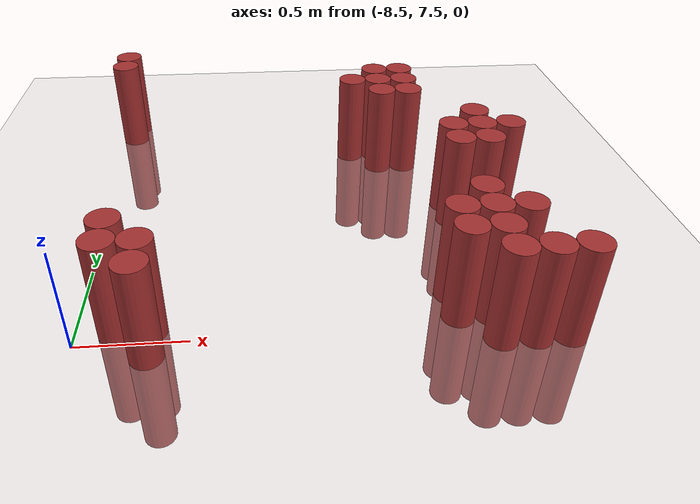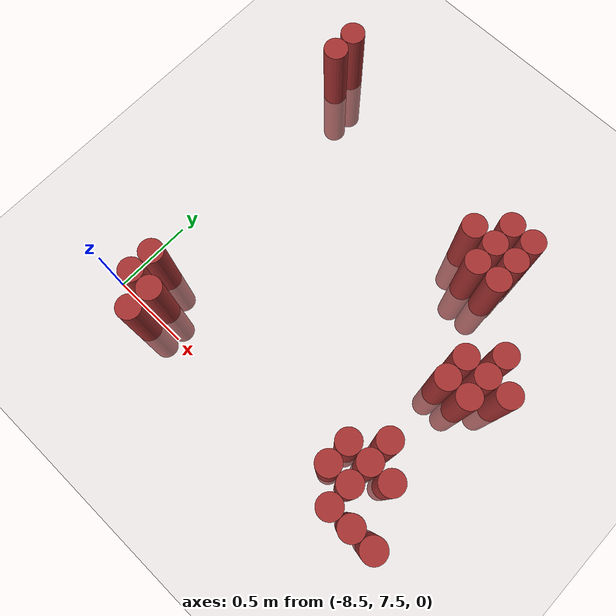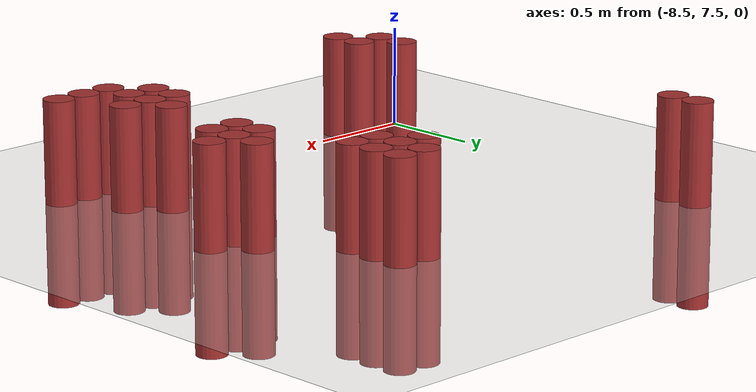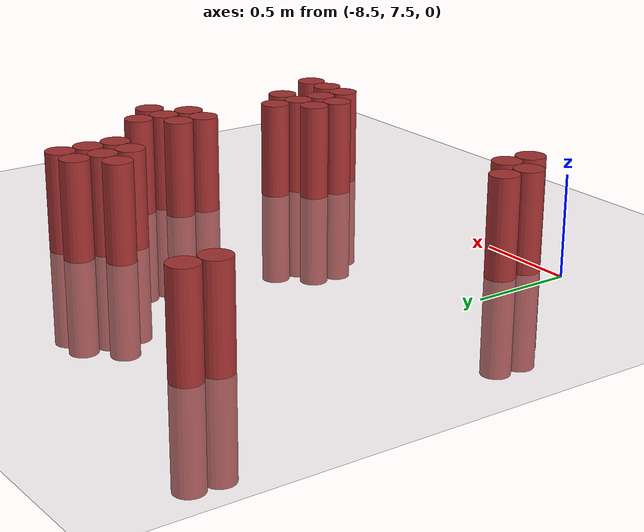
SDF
<sdf version="1.6">
 <world name="default">
  <model name="ground_plane">
   <static>1</static>
   <link name="link">
    <collision name="collision">
     <geometry><plane><normal>0 0 1</normal><size>100 100</size></plane></geometry>
     <surface><friction><ode><mu>100</mu><mu2>50</mu2></ode></friction></surface>
    </collision>
    <visual name="visual">
     <cast_shadows>0</cast_shadows>
     <geometry><plane><normal>0 0 1</normal><size>100 100</size></plane></geometry>
     <material>
      <script><uri>file://media/materials/scripts/gazebo.material</uri><name>Gazebo/Grey</name></script>
     </material>
    </visual>
   </link>
  </model>
  <model name="unit_cylinder_171">
   <static>1</static>
   <pose>-8.475000 9.375000 0.000000 0.000000 0.000000 0.000000</pose>
   <link name="link">
    <inertial>
     <mass>1</mass>
     <inertia><ixx>0.145833</ixx><ixy>0</ixy><ixz>0</ixz><iyy>0.145833</iyy><iyz>0</iyz><izz>0.125</izz></inertia>
    </inertial>
    <collision name="collision">
     <geometry><cylinder><radius>0.075000</radius><length>1</length></cylinder></geometry>
    </collision>
    <visual name="visual">
     <geometry><cylinder><radius>0.075000</radius><length>1</length></cylinder></geometry>
     <material>
      <ambient>0.648000 0.192000 0.192000 1</ambient>
      <diffuse>0.648000 0.192000 0.192000 1</diffuse>
     </material>
     <material>
      <script><name>Gazebo/Grey</name><uri>file://media/materials/scripts/gazebo.material</uri></script>
     </material>
    </visual>
   </link>
  </model>
  <model name="unit_cylinder_172">
   <static>1</static>
   <pose>-8.475000 9.525000 0.000000 0.000000 0.000000 0.000000</pose>
   <link name="link">
    <inertial>
     <mass>1</mass>
     <inertia><ixx>0.145833</ixx><ixy>0</ixy><ixz>0</ixz><iyy>0.145833</iyy><iyz>0</iyz><izz>0.125</izz></inertia>
    </inertial>
    <collision name="collision">
     <geometry><cylinder><radius>0.075000</radius><length>1</length></cylinder></geometry>
    </collision>
    <visual name="visual">
     <geometry><cylinder><radius>0.075000</radius><length>1</length></cylinder></geometry>
     <material>
      <ambient>0.648000 0.192000 0.192000 1</ambient>
      <diffuse>0.648000 0.192000 0.192000 1</diffuse>
     </material>
     <material>
      <script><name>Gazebo/Grey</name><uri>file://media/materials/scripts/gazebo.material</uri></script>
     </material>
    </visual>
   </link>
  </model>
  <model name="unit_cylinder_174">
   <static>1</static>
   <pose>-8.325000 7.575000 0.000000 0.000000 0.000000 0.000000</pose>
   <link name="link">
    <inertial>
     <mass>1</mass>
     <inertia><ixx>0.145833</ixx><ixy>0</ixy><ixz>0</ixz><iyy>0.145833</iyy><iyz>0</iyz><izz>0.125</izz></inertia>
    </inertial>
    <collision name="collision">
     <geometry><cylinder><radius>0.075000</radius><length>1</length></cylinder></geometry>
    </collision>
    <visual name="visual">
     <geometry><cylinder><radius>0.075000</radius><length>1</length></cylinder></geometry>
     <material>
      <ambient>0.648000 0.192000 0.192000 1</ambient>
      <diffuse>0.648000 0.192000 0.192000 1</diffuse>
     </material>
     <material>
      <script><name>Gazebo/Grey</name><uri>file://media/materials/scripts/gazebo.material</uri></script>
     </material>
    </visual>
   </link>
  </model>
  <model name="unit_cylinder_175">
   <static>1</static>
   <pose>-8.325000 7.725000 0.000000 0.000000 0.000000 0.000000</pose>
   <link name="link">
    <inertial>
     <mass>1</mass>
     <inertia><ixx>0.145833</ixx><ixy>0</ixy><ixz>0</ixz><iyy>0.145833</iyy><iyz>0</iyz><izz>0.125</izz></inertia>
    </inertial>
    <collision name="collision">
     <geometry><cylinder><radius>0.075000</radius><length>1</length></cylinder></geometry>
    </collision>
    <visual name="visual">
     <geometry><cylinder><radius>0.075000</radius><length>1</length></cylinder></geometry>
     <material>
      <ambient>0.648000 0.192000 0.192000 1</ambient>
      <diffuse>0.648000 0.192000 0.192000 1</diffuse>
     </material>
     <material>
      <script><name>Gazebo/Grey</name><uri>file://media/materials/scripts/gazebo.material</uri></script>
     </material>
    </visual>
   </link>
  </model>
  <model name="unit_cylinder_185">
   <static>1</static>
   <pose>-8.175000 7.425000 0.000000 0.000000 0.000000 0.000000</pose>
   <link name="link">
    <inertial>
     <mass>1</mass>
     <inertia><ixx>0.145833</ixx><ixy>0</ixy><ixz>0</ixz><iyy>0.145833</iyy><iyz>0</iyz><izz>0.125</izz></inertia>
    </inertial>
    <collision name="collision">
     <geometry><cylinder><radius>0.075000</radius><length>1</length></cylinder></geometry>
    </collision>
    <visual name="visual">
     <geometry><cylinder><radius>0.075000</radius><length>1</length></cylinder></geometry>
     <material>
      <ambient>0.648000 0.192000 0.192000 1</ambient>
      <diffuse>0.648000 0.192000 0.192000 1</diffuse>
     </material>
     <material>
      <script><name>Gazebo/Grey</name><uri>file://media/materials/scripts/gazebo.material</uri></script>
     </material>
    </visual>
   </link>
  </model>
  <model name="unit_cylinder_186">
   <static>1</static>
   <pose>-8.175000 7.575000 0.000000 0.000000 0.000000 0.000000</pose>
   <link name="link">
    <inertial>
     <mass>1</mass>
     <inertia><ixx>0.145833</ixx><ixy>0</ixy><ixz>0</ixz><iyy>0.145833</iyy><iyz>0</iyz><izz>0.125</izz></inertia>
    </inertial>
    <collision name="collision">
     <geometry><cylinder><radius>0.075000</radius><length>1</length></cylinder></geometry>
    </collision>
    <visual name="visual">
     <geometry><cylinder><radius>0.075000</radius><length>1</length></cylinder></geometry>
     <material>
      <ambient>0.648000 0.192000 0.192000 1</ambient>
      <diffuse>0.648000 0.192000 0.192000 1</diffuse>
     </material>
     <material>
      <script><name>Gazebo/Grey</name><uri>file://media/materials/scripts/gazebo.material</uri></script>
     </material>
    </visual>
   </link>
  </model>
  <model name="unit_cylinder_201">
   <static>1</static>
   <pose>-7.125000 9.075000 0.000000 0.000000 0.000000 0.000000</pose>
   <link name="link">
    <inertial>
     <mass>1</mass>
     <inertia><ixx>0.145833</ixx><ixy>0</ixy><ixz>0</ixz><iyy>0.145833</iyy><iyz>0</iyz><izz>0.125</izz></inertia>
    </inertial>
    <collision name="collision">
     <geometry><cylinder><radius>0.075000</radius><length>1</length></cylinder></geometry>
    </collision>
    <visual name="visual">
     <geometry><cylinder><radius>0.075000</radius><length>1</length></cylinder></geometry>
     <material>
      <ambient>0.648000 0.192000 0.192000 1</ambient>
      <diffuse>0.648000 0.192000 0.192000 1</diffuse>
     </material>
     <material>
      <script><name>Gazebo/Grey</name><uri>file://media/materials/scripts/gazebo.material</uri></script>
     </material>
    </visual>
   </link>
  </model>
  <model name="unit_cylinder_202">
   <static>1</static>
   <pose>-6.975000 8.925000 0.000000 0.000000 0.000000 0.000000</pose>
   <link name="link">
    <inertial>
     <mass>1</mass>
     <inertia><ixx>0.145833</ixx><ixy>0</ixy><ixz>0</ixz><iyy>0.145833</iyy><iyz>0</iyz><izz>0.125</izz></inertia>
    </inertial>
    <collision name="collision">
     <geometry><cylinder><radius>0.075000</radius><length>1</length></cylinder></geometry>
    </collision>
    <visual name="visual">
     <geometry><cylinder><radius>0.075000</radius><length>1</length></cylinder></geometry>
     <material>
      <ambient>0.648000 0.192000 0.192000 1</ambient>
      <diffuse>0.648000 0.192000 0.192000 1</diffuse>
     </material>
     <material>
      <script><name>Gazebo/Grey</name><uri>file://media/materials/scripts/gazebo.material</uri></script>
     </material>
    </visual>
   </link>
  </model>
  <model name="unit_cylinder_203">
   <static>1</static>
   <pose>-6.975000 9.075000 0.000000 0.000000 0.000000 0.000000</pose>
   <link name="link">
    <inertial>
     <mass>1</mass>
     <inertia><ixx>0.145833</ixx><ixy>0</ixy><ixz>0</ixz><iyy>0.145833</iyy><iyz>0</iyz><izz>0.125</izz></inertia>
    </inertial>
    <collision name="collision">
     <geometry><cylinder><radius>0.075000</radius><length>1</length></cylinder></geometry>
    </collision>
    <visual name="visual">
     <geometry><cylinder><radius>0.075000</radius><length>1</length></cylinder></geometry>
     <material>
      <ambient>0.648000 0.192000 0.192000 1</ambient>
      <diffuse>0.648000 0.192000 0.192000 1</diffuse>
     </material>
     <material>
      <script><name>Gazebo/Grey</name><uri>file://media/materials/scripts/gazebo.material</uri></script>
     </material>
    </visual>
   </link>
  </model>
  <model name="unit_cylinder_204">
   <static>1</static>
   <pose>-6.975000 9.225000 0.000000 0.000000 0.000000 0.000000</pose>
   <link name="link">
    <inertial>
     <mass>1</mass>
     <inertia><ixx>0.145833</ixx><ixy>0</ixy><ixz>0</ixz><iyy>0.145833</iyy><iyz>0</iyz><izz>0.125</izz></inertia>
    </inertial>
    <collision name="collision">
     <geometry><cylinder><radius>0.075000</radius><length>1</length></cylinder></geometry>
    </collision>
    <visual name="visual">
     <geometry><cylinder><radius>0.075000</radius><length>1</length></cylinder></geometry>
     <material>
      <ambient>0.648000 0.192000 0.192000 1</ambient>
      <diffuse>0.648000 0.192000 0.192000 1</diffuse>
     </material>
     <material>
      <script><name>Gazebo/Grey</name><uri>file://media/materials/scripts/gazebo.material</uri></script>
     </material>
    </visual>
   </link>
  </model>
  <model name="unit_cylinder_205">
   <static>1</static>
   <pose>-6.825000 7.575000 0.000000 0.000000 0.000000 0.000000</pose>
   <link name="link">
    <inertial>
     <mass>1</mass>
     <inertia><ixx>0.145833</ixx><ixy>0</ixy><ixz>0</ixz><iyy>0.145833</iyy><iyz>0</iyz><izz>0.125</izz></inertia>
    </inertial>
    <collision name="collision">
     <geometry><cylinder><radius>0.075000</radius><length>1</length></cylinder></geometry>
    </collision>
    <visual name="visual">
     <geometry><cylinder><radius>0.075000</radius><length>1</length></cylinder></geometry>
     <material>
      <ambient>0.648000 0.192000 0.192000 1</ambient>
      <diffuse>0.648000 0.192000 0.192000 1</diffuse>
     </material>
     <material>
      <script><name>Gazebo/Grey</name><uri>file://media/materials/scripts/gazebo.material</uri></script>
     </material>
    </visual>
   </link>
  </model>
  <model name="unit_cylinder_206">
   <static>1</static>
   <pose>-6.825000 7.725000 0.000000 0.000000 0.000000 0.000000</pose>
   <link name="link">
    <inertial>
     <mass>1</mass>
     <inertia><ixx>0.145833</ixx><ixy>0</ixy><ixz>0</ixz><iyy>0.145833</iyy><iyz>0</iyz><izz>0.125</izz></inertia>
    </inertial>
    <collision name="collision">
     <geometry><cylinder><radius>0.075000</radius><length>1</length></cylinder></geometry>
    </collision>
    <visual name="visual">
     <geometry><cylinder><radius>0.075000</radius><length>1</length></cylinder></geometry>
     <material>
      <ambient>0.648000 0.192000 0.192000 1</ambient>
      <diffuse>0.648000 0.192000 0.192000 1</diffuse>
     </material>
     <material>
      <script><name>Gazebo/Grey</name><uri>file://media/materials/scripts/gazebo.material</uri></script>
     </material>
    </visual>
   </link>
  </model>
  <model name="unit_cylinder_207">
   <static>1</static>
   <pose>-6.825000 8.925000 0.000000 0.000000 0.000000 0.000000</pose>
   <link name="link">
    <inertial>
     <mass>1</mass>
     <inertia><ixx>0.145833</ixx><ixy>0</ixy><ixz>0</ixz><iyy>0.145833</iyy><iyz>0</iyz><izz>0.125</izz></inertia>
    </inertial>
    <collision name="collision">
     <geometry><cylinder><radius>0.075000</radius><length>1</length></cylinder></geometry>
    </collision>
    <visual name="visual">
     <geometry><cylinder><radius>0.075000</radius><length>1</length></cylinder></geometry>
     <material>
      <ambient>0.648000 0.192000 0.192000 1</ambient>
      <diffuse>0.648000 0.192000 0.192000 1</diffuse>
     </material>
     <material>
      <script><name>Gazebo/Grey</name><uri>file://media/materials/scripts/gazebo.material</uri></script>
     </material>
    </visual>
   </link>
  </model>
  <model name="unit_cylinder_208">
   <static>1</static>
   <pose>-6.825000 9.075000 0.000000 0.000000 0.000000 0.000000</pose>
   <link name="link">
    <inertial>
     <mass>1</mass>
     <inertia><ixx>0.145833</ixx><ixy>0</ixy><ixz>0</ixz><iyy>0.145833</iyy><iyz>0</iyz><izz>0.125</izz></inertia>
    </inertial>
    <collision name="collision">
     <geometry><cylinder><radius>0.075000</radius><length>1</length></cylinder></geometry>
    </collision>
    <visual name="visual">
     <geometry><cylinder><radius>0.075000</radius><length>1</length></cylinder></geometry>
     <material>
      <ambient>0.648000 0.192000 0.192000 1</ambient>
      <diffuse>0.648000 0.192000 0.192000 1</diffuse>
     </material>
     <material>
      <script><name>Gazebo/Grey</name><uri>file://media/materials/scripts/gazebo.material</uri></script>
     </material>
    </visual>
   </link>
  </model>
  <model name="unit_cylinder_209">
   <static>1</static>
   <pose>-6.825000 9.225000 0.000000 0.000000 0.000000 0.000000</pose>
   <link name="link">
    <inertial>
     <mass>1</mass>
     <inertia><ixx>0.145833</ixx><ixy>0</ixy><ixz>0</ixz><iyy>0.145833</iyy><iyz>0</iyz><izz>0.125</izz></inertia>
    </inertial>
    <collision name="collision">
     <geometry><cylinder><radius>0.075000</radius><length>1</length></cylinder></geometry>
    </collision>
    <visual name="visual">
     <geometry><cylinder><radius>0.075000</radius><length>1</length></cylinder></geometry>
     <material>
      <ambient>0.648000 0.192000 0.192000 1</ambient>
      <diffuse>0.648000 0.192000 0.192000 1</diffuse>
     </material>
     <material>
      <script><name>Gazebo/Grey</name><uri>file://media/materials/scripts/gazebo.material</uri></script>
     </material>
    </visual>
   </link>
  </model>
  <model name="unit_cylinder_211">
   <static>1</static>
   <pose>-6.675000 7.425000 0.000000 0.000000 0.000000 0.000000</pose>
   <link name="link">
    <inertial>
     <mass>1</mass>
     <inertia><ixx>0.145833</ixx><ixy>0</ixy><ixz>0</ixz><iyy>0.145833</iyy><iyz>0</iyz><izz>0.125</izz></inertia>
    </inertial>
    <collision name="collision">
     <geometry><cylinder><radius>0.075000</radius><length>1</length></cylinder></geometry>
    </collision>
    <visual name="visual">
     <geometry><cylinder><radius>0.075000</radius><length>1</length></cylinder></geometry>
     <material>
      <ambient>0.648000 0.192000 0.192000 1</ambient>
      <diffuse>0.648000 0.192000 0.192000 1</diffuse>
     </material>
     <material>
      <script><name>Gazebo/Grey</name><uri>file://media/materials/scripts/gazebo.material</uri></script>
     </material>
    </visual>
   </link>
  </model>
  <model name="unit_cylinder_212">
   <static>1</static>
   <pose>-6.675000 7.575000 0.000000 0.000000 0.000000 0.000000</pose>
   <link name="link">
    <inertial>
     <mass>1</mass>
     <inertia><ixx>0.145833</ixx><ixy>0</ixy><ixz>0</ixz><iyy>0.145833</iyy><iyz>0</iyz><izz>0.125</izz></inertia>
    </inertial>
    <collision name="collision">
     <geometry><cylinder><radius>0.075000</radius><length>1</length></cylinder></geometry>
    </collision>
    <visual name="visual">
     <geometry><cylinder><radius>0.075000</radius><length>1</length></cylinder></geometry>
     <material>
      <ambient>0.648000 0.192000 0.192000 1</ambient>
      <diffuse>0.648000 0.192000 0.192000 1</diffuse>
     </material>
     <material>
      <script><name>Gazebo/Grey</name><uri>file://media/materials/scripts/gazebo.material</uri></script>
     </material>
    </visual>
   </link>
  </model>
  <model name="unit_cylinder_213">
   <static>1</static>
   <pose>-6.675000 7.725000 0.000000 0.000000 0.000000 0.000000</pose>
   <link name="link">
    <inertial>
     <mass>1</mass>
     <inertia><ixx>0.145833</ixx><ixy>0</ixy><ixz>0</ixz><iyy>0.145833</iyy><iyz>0</iyz><izz>0.125</izz></inertia>
    </inertial>
    <collision name="collision">
     <geometry><cylinder><radius>0.075000</radius><length>1</length></cylinder></geometry>
    </collision>
    <visual name="visual">
     <geometry><cylinder><radius>0.075000</radius><length>1</length></cylinder></geometry>
     <material>
      <ambient>0.648000 0.192000 0.192000 1</ambient>
      <diffuse>0.648000 0.192000 0.192000 1</diffuse>
     </material>
     <material>
      <script><name>Gazebo/Grey</name><uri>file://media/materials/scripts/gazebo.material</uri></script>
     </material>
    </visual>
   </link>
  </model>
  <model name="unit_cylinder_214">
   <static>1</static>
   <pose>-6.675000 7.875000 0.000000 0.000000 0.000000 0.000000</pose>
   <link name="link">
    <inertial>
     <mass>1</mass>
     <inertia><ixx>0.145833</ixx><ixy>0</ixy><ixz>0</ixz><iyy>0.145833</iyy><iyz>0</iyz><izz>0.125</izz></inertia>
    </inertial>
    <collision name="collision">
     <geometry><cylinder><radius>0.075000</radius><length>1</length></cylinder></geometry>
    </collision>
    <visual name="visual">
     <geometry><cylinder><radius>0.075000</radius><length>1</length></cylinder></geometry>
     <material>
      <ambient>0.648000 0.192000 0.192000 1</ambient>
      <diffuse>0.648000 0.192000 0.192000 1</diffuse>
     </material>
     <material>
      <script><name>Gazebo/Grey</name><uri>file://media/materials/scripts/gazebo.material</uri></script>
     </material>
    </visual>
   </link>
  </model>
  <model name="unit_cylinder_215">
   <static>1</static>
   <pose>-6.675000 8.325000 0.000000 0.000000 0.000000 0.000000</pose>
   <link name="link">
    <inertial>
     <mass>1</mass>
     <inertia><ixx>0.145833</ixx><ixy>0</ixy><ixz>0</ixz><iyy>0.145833</iyy><iyz>0</iyz><izz>0.125</izz></inertia>
    </inertial>
    <collision name="collision">
     <geometry><cylinder><radius>0.075000</radius><length>1</length></cylinder></geometry>
    </collision>
    <visual name="visual">
     <geometry><cylinder><radius>0.075000</radius><length>1</length></cylinder></geometry>
     <material>
      <ambient>0.648000 0.192000 0.192000 1</ambient>
      <diffuse>0.648000 0.192000 0.192000 1</diffuse>
     </material>
     <material>
      <script><name>Gazebo/Grey</name><uri>file://media/materials/scripts/gazebo.material</uri></script>
     </material>
    </visual>
   </link>
  </model>
  <model name="unit_cylinder_216">
   <static>1</static>
   <pose>-6.675000 8.475000 0.000000 0.000000 0.000000 0.000000</pose>
   <link name="link">
    <inertial>
     <mass>1</mass>
     <inertia><ixx>0.145833</ixx><ixy>0</ixy><ixz>0</ixz><iyy>0.145833</iyy><iyz>0</iyz><izz>0.125</izz></inertia>
    </inertial>
    <collision name="collision">
     <geometry><cylinder><radius>0.075000</radius><length>1</length></cylinder></geometry>
    </collision>
    <visual name="visual">
     <geometry><cylinder><radius>0.075000</radius><length>1</length></cylinder></geometry>
     <material>
      <ambient>0.648000 0.192000 0.192000 1</ambient>
      <diffuse>0.648000 0.192000 0.192000 1</diffuse>
     </material>
     <material>
      <script><name>Gazebo/Grey</name><uri>file://media/materials/scripts/gazebo.material</uri></script>
     </material>
    </visual>
   </link>
  </model>
  <model name="unit_cylinder_218">
   <static>1</static>
   <pose>-6.525000 7.425000 0.000000 0.000000 0.000000 0.000000</pose>
   <link name="link">
    <inertial>
     <mass>1</mass>
     <inertia><ixx>0.145833</ixx><ixy>0</ixy><ixz>0</ixz><iyy>0.145833</iyy><iyz>0</iyz><izz>0.125</izz></inertia>
    </inertial>
    <collision name="collision">
     <geometry><cylinder><radius>0.075000</radius><length>1</length></cylinder></geometry>
    </collision>
    <visual name="visual">
     <geometry><cylinder><radius>0.075000</radius><length>1</length></cylinder></geometry>
     <material>
      <ambient>0.648000 0.192000 0.192000 1</ambient>
      <diffuse>0.648000 0.192000 0.192000 1</diffuse>
     </material>
     <material>
      <script><name>Gazebo/Grey</name><uri>file://media/materials/scripts/gazebo.material</uri></script>
     </material>
    </visual>
   </link>
  </model>
  <model name="unit_cylinder_219">
   <static>1</static>
   <pose>-6.525000 7.725000 0.000000 0.000000 0.000000 0.000000</pose>
   <link name="link">
    <inertial>
     <mass>1</mass>
     <inertia><ixx>0.145833</ixx><ixy>0</ixy><ixz>0</ixz><iyy>0.145833</iyy><iyz>0</iyz><izz>0.125</izz></inertia>
    </inertial>
    <collision name="collision">
     <geometry><cylinder><radius>0.075000</radius><length>1</length></cylinder></geometry>
    </collision>
    <visual name="visual">
     <geometry><cylinder><radius>0.075000</radius><length>1</length></cylinder></geometry>
     <material>
      <ambient>0.648000 0.192000 0.192000 1</ambient>
      <diffuse>0.648000 0.192000 0.192000 1</diffuse>
     </material>
     <material>
      <script><name>Gazebo/Grey</name><uri>file://media/materials/scripts/gazebo.material</uri></script>
     </material>
    </visual>
   </link>
  </model>
  <model name="unit_cylinder_220">
   <static>1</static>
   <pose>-6.525000 8.325000 0.000000 0.000000 0.000000 0.000000</pose>
   <link name="link">
    <inertial>
     <mass>1</mass>
     <inertia><ixx>0.145833</ixx><ixy>0</ixy><ixz>0</ixz><iyy>0.145833</iyy><iyz>0</iyz><izz>0.125</izz></inertia>
    </inertial>
    <collision name="collision">
     <geometry><cylinder><radius>0.075000</radius><length>1</length></cylinder></geometry>
    </collision>
    <visual name="visual">
     <geometry><cylinder><radius>0.075000</radius><length>1</length></cylinder></geometry>
     <material>
      <ambient>0.648000 0.192000 0.192000 1</ambient>
      <diffuse>0.648000 0.192000 0.192000 1</diffuse>
     </material>
     <material>
      <script><name>Gazebo/Grey</name><uri>file://media/materials/scripts/gazebo.material</uri></script>
     </material>
    </visual>
   </link>
  </model>
  <model name="unit_cylinder_221">
   <static>1</static>
   <pose>-6.525000 8.475000 0.000000 0.000000 0.000000 0.000000</pose>
   <link name="link">
    <inertial>
     <mass>1</mass>
     <inertia><ixx>0.145833</ixx><ixy>0</ixy><ixz>0</ixz><iyy>0.145833</iyy><iyz>0</iyz><izz>0.125</izz></inertia>
    </inertial>
    <collision name="collision">
     <geometry><cylinder><radius>0.075000</radius><length>1</length></cylinder></geometry>
    </collision>
    <visual name="visual">
     <geometry><cylinder><radius>0.075000</radius><length>1</length></cylinder></geometry>
     <material>
      <ambient>0.648000 0.192000 0.192000 1</ambient>
      <diffuse>0.648000 0.192000 0.192000 1</diffuse>
     </material>
     <material>
      <script><name>Gazebo/Grey</name><uri>file://media/materials/scripts/gazebo.material</uri></script>
     </material>
    </visual>
   </link>
  </model>
  <model name="unit_cylinder_222">
   <static>1</static>
   <pose>-6.525000 8.625000 0.000000 0.000000 0.000000 0.000000</pose>
   <link name="link">
    <inertial>
     <mass>1</mass>
     <inertia><ixx>0.145833</ixx><ixy>0</ixy><ixz>0</ixz><iyy>0.145833</iyy><iyz>0</iyz><izz>0.125</izz></inertia>
    </inertial>
    <collision name="collision">
     <geometry><cylinder><radius>0.075000</radius><length>1</length></cylinder></geometry>
    </collision>
    <visual name="visual">
     <geometry><cylinder><radius>0.075000</radius><length>1</length></cylinder></geometry>
     <material>
      <ambient>0.648000 0.192000 0.192000 1</ambient>
      <diffuse>0.648000 0.192000 0.192000 1</diffuse>
     </material>
     <material>
      <script><name>Gazebo/Grey</name><uri>file://media/materials/scripts/gazebo.material</uri></script>
     </material>
    </visual>
   </link>
  </model>
  <model name="unit_cylinder_224">
   <static>1</static>
   <pose>-6.375000 7.425000 0.000000 0.000000 0.000000 0.000000</pose>
   <link name="link">
    <inertial>
     <mass>1</mass>
     <inertia><ixx>0.145833</ixx><ixy>0</ixy><ixz>0</ixz><iyy>0.145833</iyy><iyz>0</iyz><izz>0.125</izz></inertia>
    </inertial>
    <collision name="collision">
     <geometry><cylinder><radius>0.075000</radius><length>1</length></cylinder></geometry>
    </collision>
    <visual name="visual">
     <geometry><cylinder><radius>0.075000</radius><length>1</length></cylinder></geometry>
     <material>
      <ambient>0.648000 0.192000 0.192000 1</ambient>
      <diffuse>0.648000 0.192000 0.192000 1</diffuse>
     </material>
     <material>
      <script><name>Gazebo/Grey</name><uri>file://media/materials/scripts/gazebo.material</uri></script>
     </material>
    </visual>
   </link>
  </model>
  <model name="unit_cylinder_225">
   <static>1</static>
   <pose>-6.375000 8.475000 0.000000 0.000000 0.000000 0.000000</pose>
   <link name="link">
    <inertial>
     <mass>1</mass>
     <inertia><ixx>0.145833</ixx><ixy>0</ixy><ixz>0</ixz><iyy>0.145833</iyy><iyz>0</iyz><izz>0.125</izz></inertia>
    </inertial>
    <collision name="collision">
     <geometry><cylinder><radius>0.075000</radius><length>1</length></cylinder></geometry>
    </collision>
    <visual name="visual">
     <geometry><cylinder><radius>0.075000</radius><length>1</length></cylinder></geometry>
     <material>
      <ambient>0.648000 0.192000 0.192000 1</ambient>
      <diffuse>0.648000 0.192000 0.192000 1</diffuse>
     </material>
     <material>
      <script><name>Gazebo/Grey</name><uri>file://media/materials/scripts/gazebo.material</uri></script>
     </material>
    </visual>
   </link>
  </model>
 </world>
</sdf>
